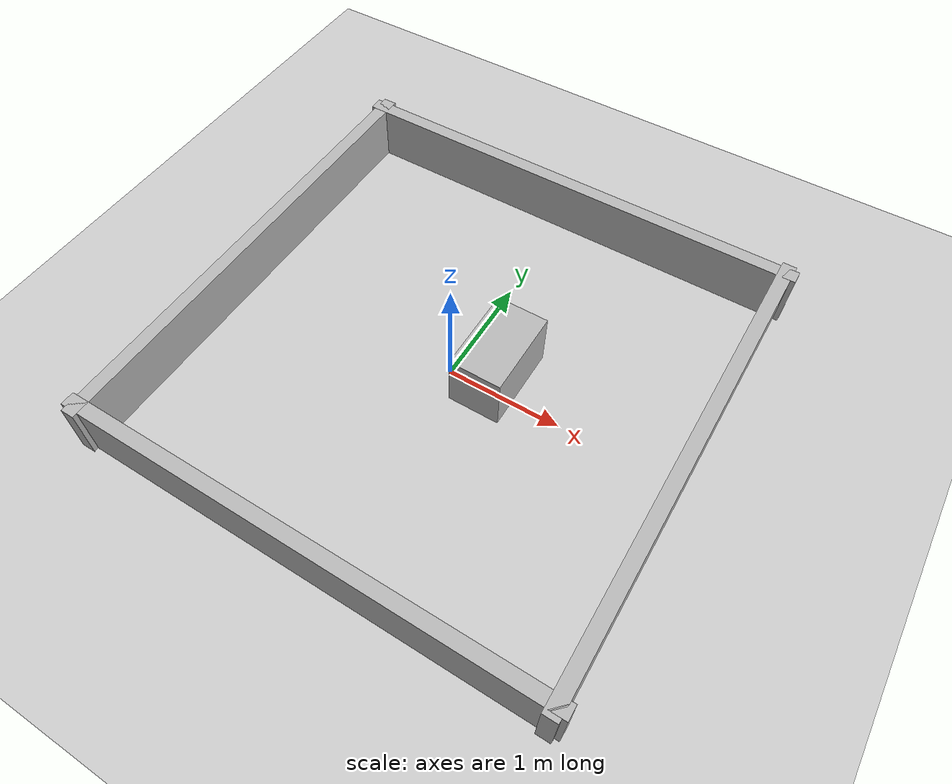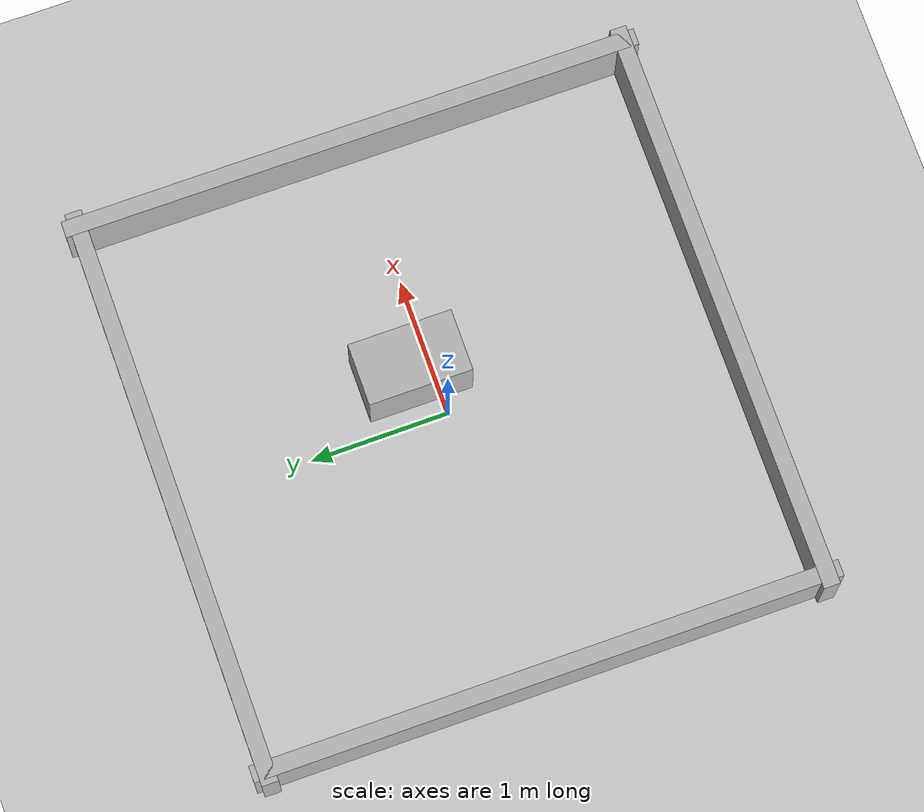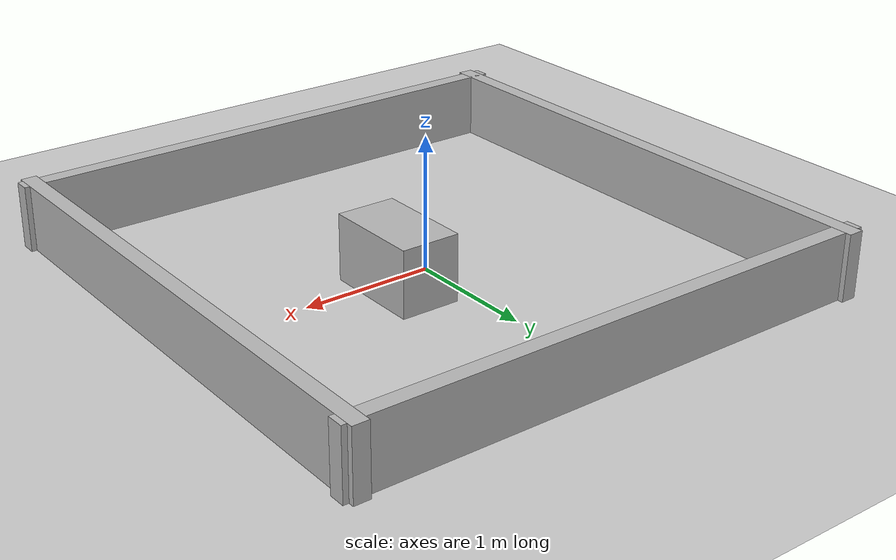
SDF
<?xml version="1.0"?>
<sdf version="1.6">
  <world name="simple_room">
    <include>
      <uri>model://sun</uri>
    </include>
    <include>
      <uri>model://ground_plane</uri>
    </include>

    <model name="north_wall">
      <static>true</static>
      <pose>0 2 0.25 0 0 0</pose>
      <link name="link">
        <collision name="collision"><geometry><box><size>4.2 0.12 0.5</size></box></geometry></collision>
        <visual name="visual"><geometry><box><size>4.2 0.12 0.5</size></box></geometry></visual>
      </link>
    </model>
    <model name="south_wall">
      <static>true</static>
      <pose>0 -2 0.25 0 0 0</pose>
      <link name="link">
        <collision name="collision"><geometry><box><size>4.2 0.12 0.5</size></box></geometry></collision>
        <visual name="visual"><geometry><box><size>4.2 0.12 0.5</size></box></geometry></visual>
      </link>
    </model>
    <model name="east_wall">
      <static>true</static>
      <pose>2 0 0.25 0 0 0</pose>
      <link name="link">
        <collision name="collision"><geometry><box><size>0.12 4.2 0.5</size></box></geometry></collision>
        <visual name="visual"><geometry><box><size>0.12 4.2 0.5</size></box></geometry></visual>
      </link>
    </model>
    <model name="west_wall">
      <static>true</static>
      <pose>-2 0 0.25 0 0 0</pose>
      <link name="link">
        <collision name="collision"><geometry><box><size>0.12 4.2 0.5</size></box></geometry></collision>
        <visual name="visual"><geometry><box><size>0.12 4.2 0.5</size></box></geometry></visual>
      </link>
    </model>
    <model name="center_obstacle">
      <static>true</static>
      <pose>0.35 0.15 0.25 0 0 0</pose>
      <link name="link">
        <collision name="collision"><geometry><box><size>0.45 0.75 0.5</size></box></geometry></collision>
        <visual name="visual"><geometry><box><size>0.45 0.75 0.5</size></box></geometry></visual>
      </link>
    </model>
  </world>
</sdf>
